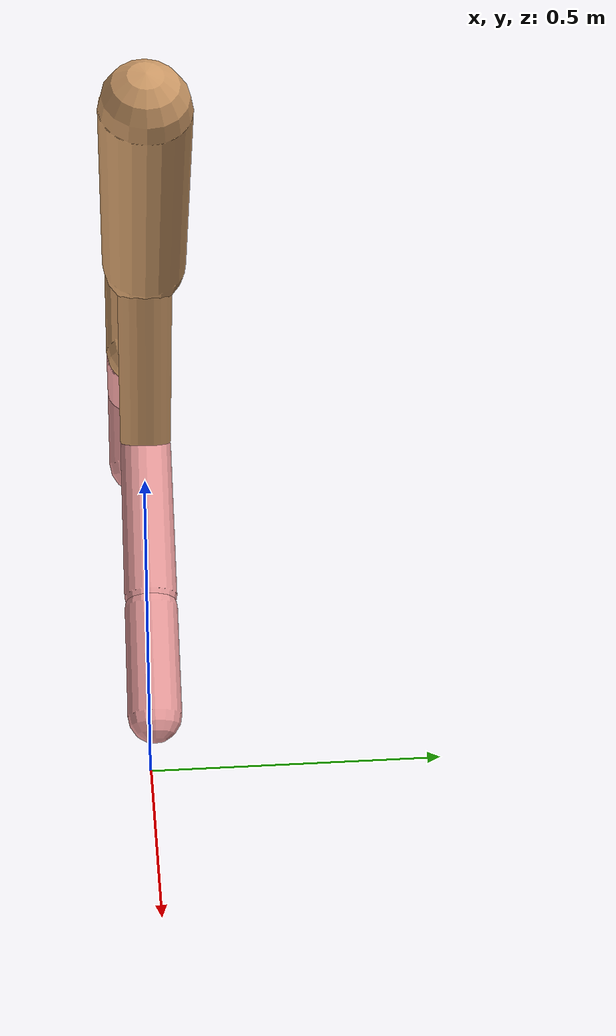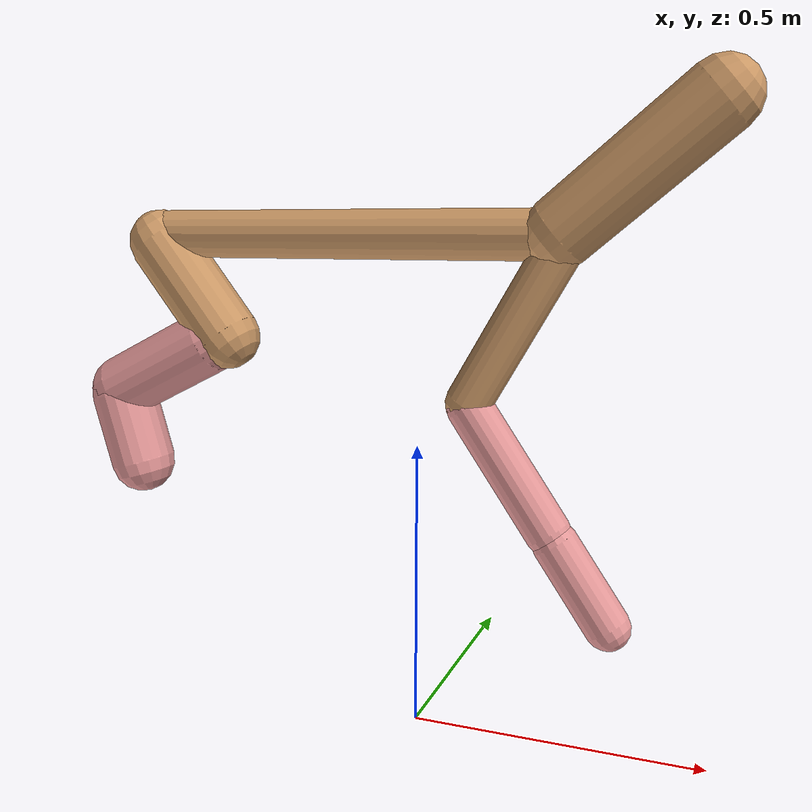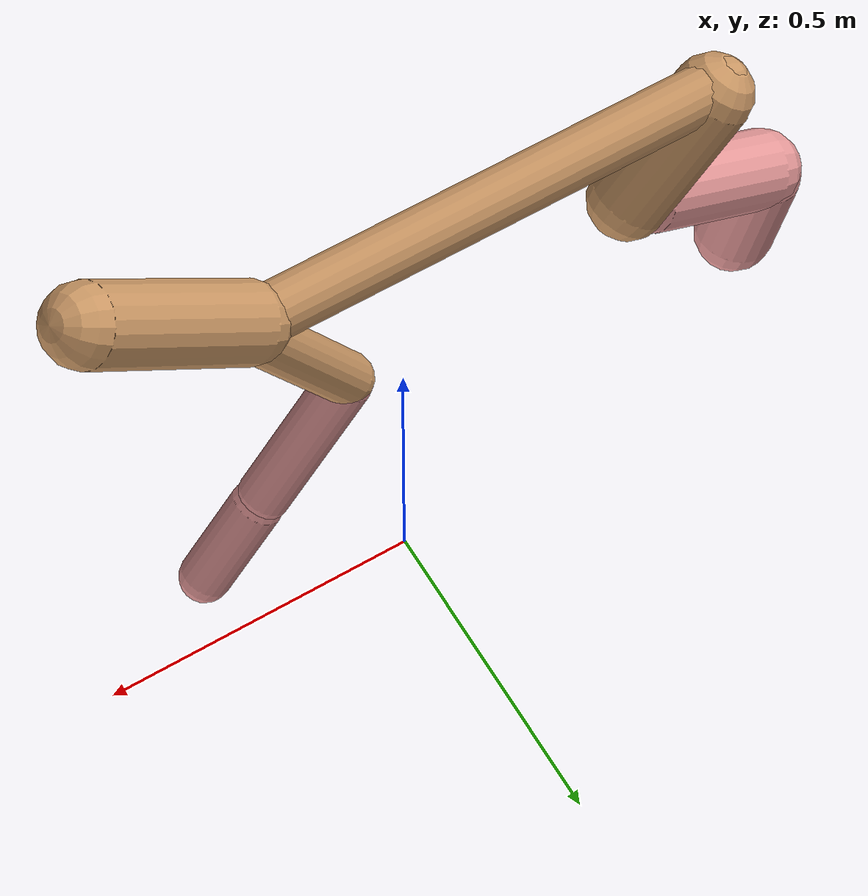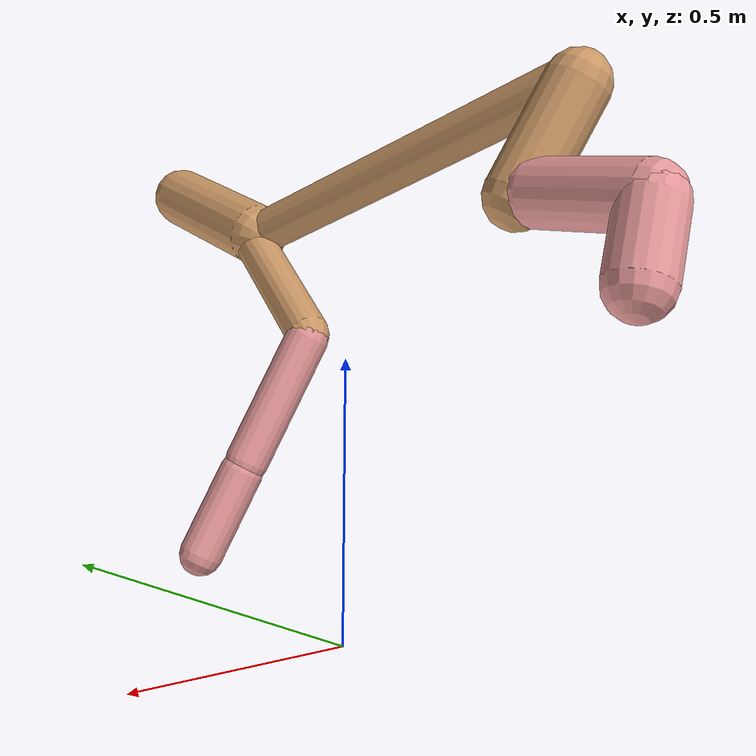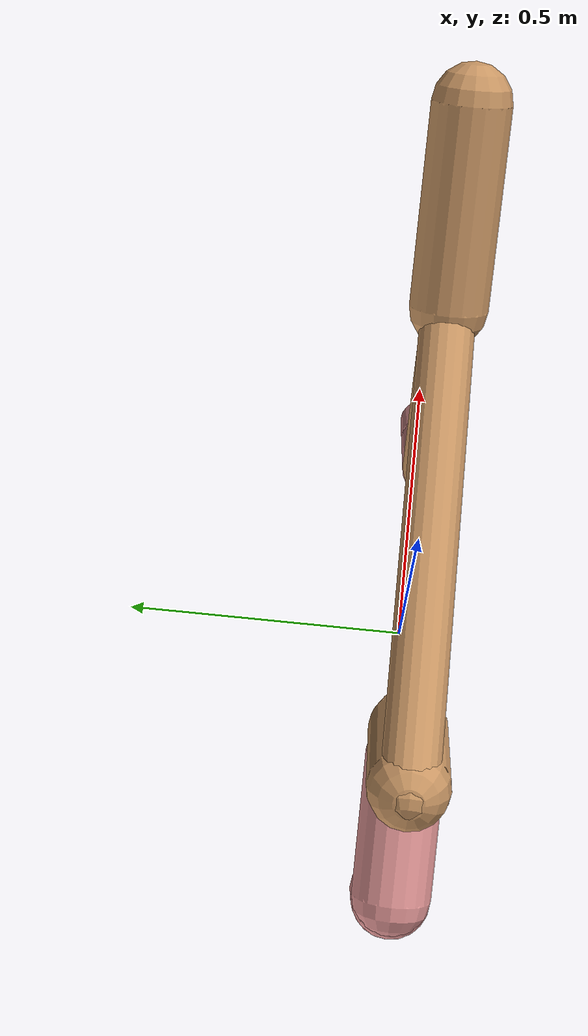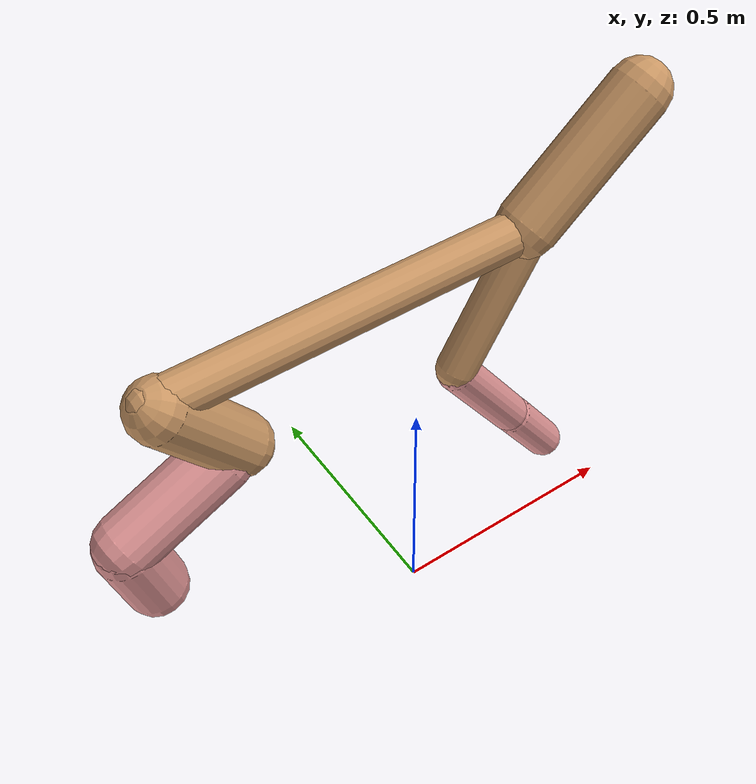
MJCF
<mujoco model="cheetah">
  <compiler angle="radian" coordinate="local" inertiafromgeom="true" settotalmass="14" />
  <default>
    <joint armature=".1" damping=".01" limited="true" solimplimit="0 .8 .03" solreflimit=".02 1" stiffness="8" />
    <geom conaffinity="0" condim="3" contype="1" friction="0.8 .1 .1" rgba="0.8 0.6 .4 1" solimp="0.0 0.8 0.01" solref="0.02 1" />
    <motor ctrllimited="true" ctrlrange="-1 1" />
  </default>
  <size nstack="300000" nuser_geom="1" />
  <option gravity="0 0 -9.81" timestep="0.01" />
  <worldbody>
    <body name="torso" pos="0.0 0.0 0.8537206376233363">
      <joint armature="0" axis="1 0 0" damping="0" limited="false" name="ignorex" pos="0 0 0" stiffness="0" type="slide" />
      <joint armature="0" axis="0 0 1" damping="0" limited="false" name="ignorez" pos="0 0 0" stiffness="0" type="slide" />
      <joint armature="0" axis="0 1 0" damping="0" limited="false" name="ignorey" pos="0 0 0" stiffness="0" type="hinge" />
      <geom fromto="-0.5 0.0 0.0 0.24664145030683604 0.0 0.0" name="torso" size="0.04117898335497568" type="capsule" />
      <geom axisangle="0 1 0 .87" name="head" pos="0.346641450306836 0.0 0.1" size="0.058703012740770465 0.15" type="capsule" />

      <body name="bthigh" pos="-.5 0 0">
        <joint axis="0 1 0" damping="6" name="bthigh" pos="0 0 0" range="-.52 1.05" stiffness="240" type="hinge" />
        <geom axisangle="0 1 0 -3.8" name="bthigh" pos="0.07500167699505268 0.0 -0.09750218009356848" size="0.0584933824861117 0.10399970180924856" type="capsule" />
        <body name="bshin" pos="0.11000335399010536 0.0 -0.18500436018713695">
          <joint axis="0 1 0" damping="4.5" name="bshin" pos="0 0 0" range="-.785 .785" stiffness="180" type="hinge" />
          <geom axisangle="0 1 0 -2.03" name="bshin" pos="-0.1020636742680213 0.0 -0.05103183713401065" rgba="0.9 0.6 0.6 1" size="0.0584933824861117 0.10758589842336058" type="capsule" />
          <body name="bfoot" pos="-0.2041273485360426 0.0 -0.1020636742680213">
            <joint axis="0 1 0" damping="3" name="bfoot" pos="0 0 0" range="-.4 .785" stiffness="120" type="hinge" />
            <geom axisangle="0 1 0 -.27" name="bfoot" pos="0.022146561419741466 0.0 -0.07160721525716408" rgba="0.9 0.6 0.6 1" size="0.0584933824861117 0.06742049634530596" type="capsule" />
            <inertial mass="10" />
          </body>
        </body>
      </body>
      <body name="fthigh" pos="0.24664145030683604 0.0 0.0">
        <joint axis="0 1 0" damping="4.5" name="fthigh" pos="0 0 0" range="-1.5 0.8" stiffness="180" type="hinge" />
        <geom axisangle="0 1 0 .52" name="fthigh" pos="-0.08077569552094536 0.0 -0.13847262089304918" size="0.038762091135602694 0.1543858209245855" type="capsule" />
        <body name="fshin" pos="-0.16155139104189073 0.0 -0.27694524178609836">
          <joint axis="0 1 0" damping="3" name="fshin" pos="0 0 0" range="-1.2 1.1" stiffness="120" type="hinge" />
          <geom axisangle="0 1 0 -.6" name="fshin" pos="0.07497929917729695 0.0 -0.10381749116856501" rgba="0.9 0.6 0.6 1" size="0.038762091135602694 0.12304433848124859" type="capsule" />
          <body name="ffoot" pos="0.1499585983545939 0.0 -0.20763498233713001">
            <joint axis="0 1 0" damping="1.5" name="ffoot" pos="0 0 0" range="-3.1 -0.3" stiffness="60" type="hinge" />
            <geom axisangle="0 1 0 -.6" name="ffoot" pos="0.051086602637600356 0.0 -0.07946804854737834" rgba="0.9 0.6 0.6 1" size="0.038762091135602694 0.08125569522346605" type="capsule" />
            <inertial mass="10" />
          </body>
        </body>
      </body>
    </body>
  </worldbody>
  <actuator>
    <motor gear="120" joint="bthigh" name="bthigh" />
    <motor gear="90" joint="bshin" name="bshin" />
    <motor gear="60" joint="bfoot" name="bfoot" />
    <motor gear="120" joint="fthigh" name="fthigh" />
    <motor gear="60" joint="fshin" name="fshin" />
    <motor gear="30" joint="ffoot" name="ffoot" />
  </actuator>
</mujoco>
